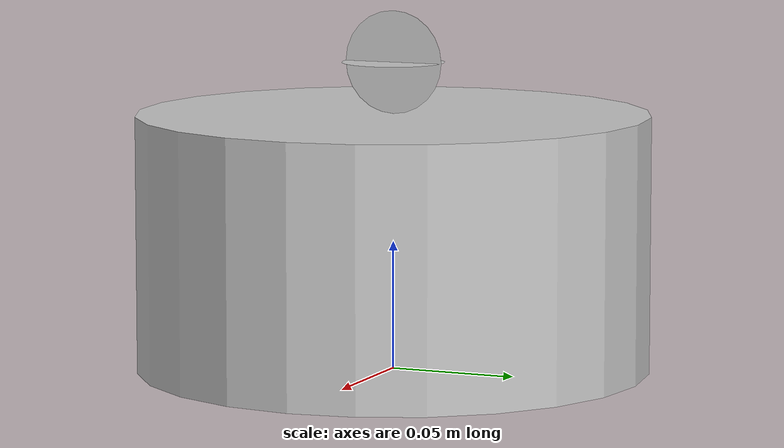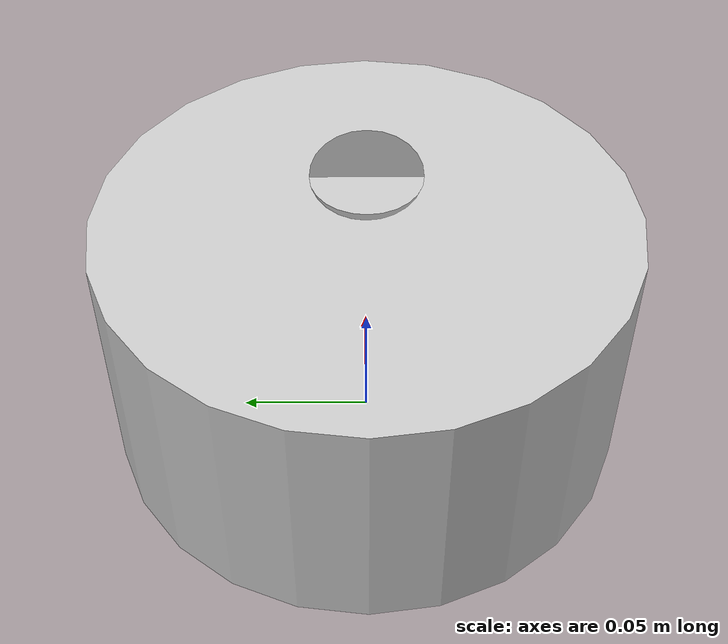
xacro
<?xml version="1.0"?>
<robot name="furuta_pendulum" xmlns:xacro="http://www.ros.org/wiki/xacro">
  <xacro:arg name="m1" default="0.0" />
  <xacro:arg name="m2" default="0.0" />

  <xacro:arg name="l1" default="0.0" />
  <xacro:arg name="l2" default="0.0" />

  <xacro:arg name="L1" default="0.0" />
  <xacro:arg name="L2" default="0.0" />

  <xacro:arg name="J1" default="0.0" />
  <xacro:arg name="J2" default="0.0" />

  <xacro:arg name="b1" default="0.0" />
  <xacro:arg name="b2" default="0.0" />

  <material name="grey">
    <color rgba="0.8 0.8 0.8 1.0" />
  </material>

  <xacro:property name="base_radius" value="0.1" />
  <xacro:property name="base_length" value="0.1" />

  <xacro:property name="arm1_radius" value="0.02" />
  <xacro:property name="arm1_length" value="$(arg L1)" />

  <xacro:property name="arm2_radius" value="0.02" />
  <xacro:property name="arm2_length" value="$(arg L2)" />

  <!-- https://www.hindawi.com/journals/jcse/2011/528341/ here this inertias
    are approximated by 0.0, I set them to really low value, to get correct
    visualtizations in rviz -->
  <xacro:property name="arm1_inertia_x" value="0.000001" />
  <xacro:property name="arm2_inertia_z" value="0.000001" />

  <link name="base_link">
    <visual>
      <origin xyz="0.0 0.0 ${base_length/2.0}" rpy="0.0 0.0 0.0" />
      <geometry>
        <cylinder radius="${base_radius}" length="${base_length}" />
      </geometry>
      <material name="grey" />
    </visual>
  </link>

  <joint name="joint1" type="continuous">
    <origin xyz="0.0 0.0 ${base_length+arm1_radius}" rpy="0.0 0.0 0.0" />
    <parent link="base_link" />
    <child link="arm1" />
    <axis xyz="0 0 1" />
    <dynamics damping="$(arg b1)" />
  </joint>

  <link name="arm1">
    <visual>
      <origin xyz="${arm1_length/2.0} 0.0 0.0" rpy="0.0 ${pi/2.0} 0.0" />
      <geometry>
        <cylinder radius="${arm1_radius}" length="${arm1_length}" />
      </geometry>
      <material name="grey" />
    </visual>

    <collision>
      <origin xyz="${arm1_length/2.0} 0.0 0.0" rpy="0.0 ${pi/2.0} 0.0" />
      <geometry>
        <cylinder radius="${arm1_radius}" length="${arm1_length}" />
      </geometry>
    </collision>

    <inertial>
      <mass value="$(arg m1)" />
      <origin xyz="$(arg l1) 0.0 0.0" rpy="0.0 0.0 0.0" />
      <inertia ixx="${arm1_inertia_x}" ixy="0.0"       ixz="0.0"
                                       iyy="$(arg J1)" iyz="0.0"
                                                       izz="$(arg J1)" />
    </inertial>
  </link>

  <joint name="joint2" type="continuous">
    <!-- -pi rotation so that for 0 pendulum is downward -->
    <origin xyz="${arm1_length} 0.0 0.0" rpy="${-pi} 0.0 0.0" />
    <parent link="arm1" />
    <child link="arm2" />
    <axis xyz="1 0 0" />
    <dynamics damping="$(arg b2)" />
  </joint>

  <link name="arm2">
    <visual>
      <origin xyz="0.0 0.0 ${arm2_length/2.0}" rpy="0.0 0.0 0.0" />
      <geometry>
        <cylinder radius="${arm2_radius}" length="${arm2_length}" />
      </geometry>
      <material name="grey" />
    </visual>

    <collision>
      <origin xyz="0.0 0.0 ${arm2_length/2.0}" rpy="0.0 0.0 0.0" />
      <geometry>
        <cylinder radius="${arm2_radius}" length="${arm2_length}" />
      </geometry>
    </collision>

    <inertial>
      <mass value="$(arg m2)" />
      <origin xyz="0.0 0.0 $(arg l2)" rpy="0.0 0.0 0.0" />
      <inertia ixx="$(arg J2)" ixy="0.0"       ixz="0.0"
                               iyy="$(arg J2)" iyz="0.0"
                                               izz="${arm2_inertia_z}" />
    </inertial>
  </link>

</robot>
